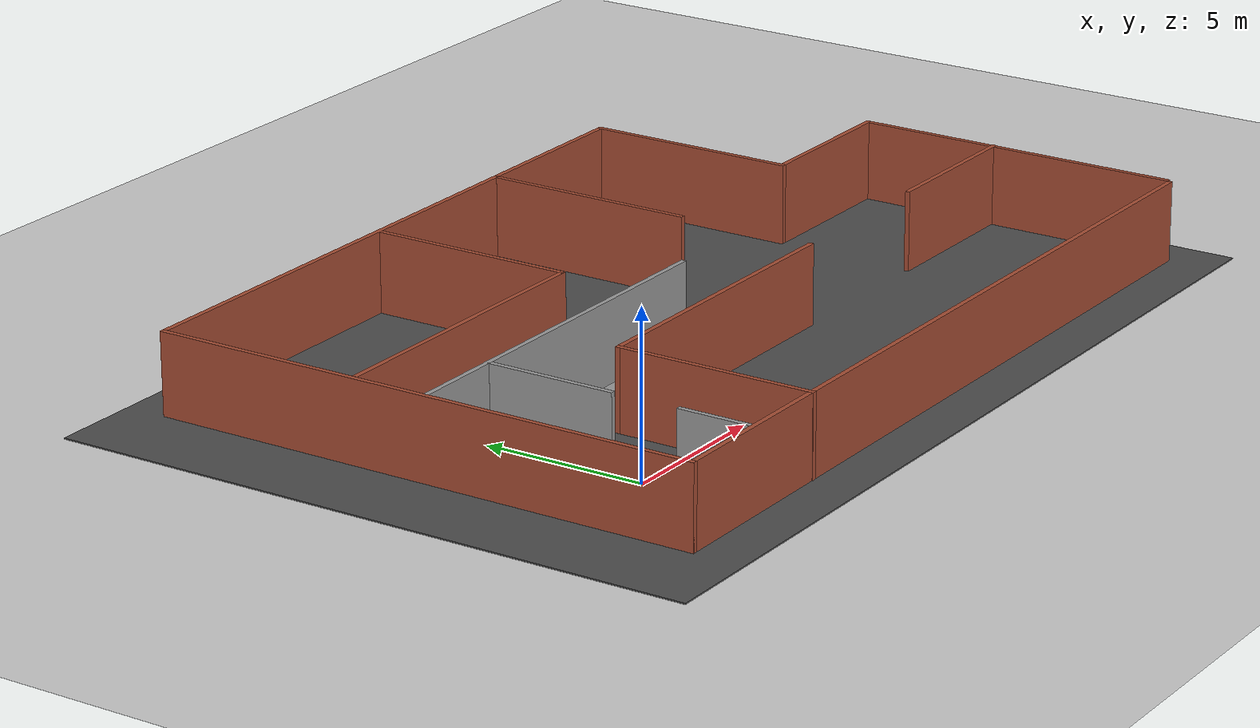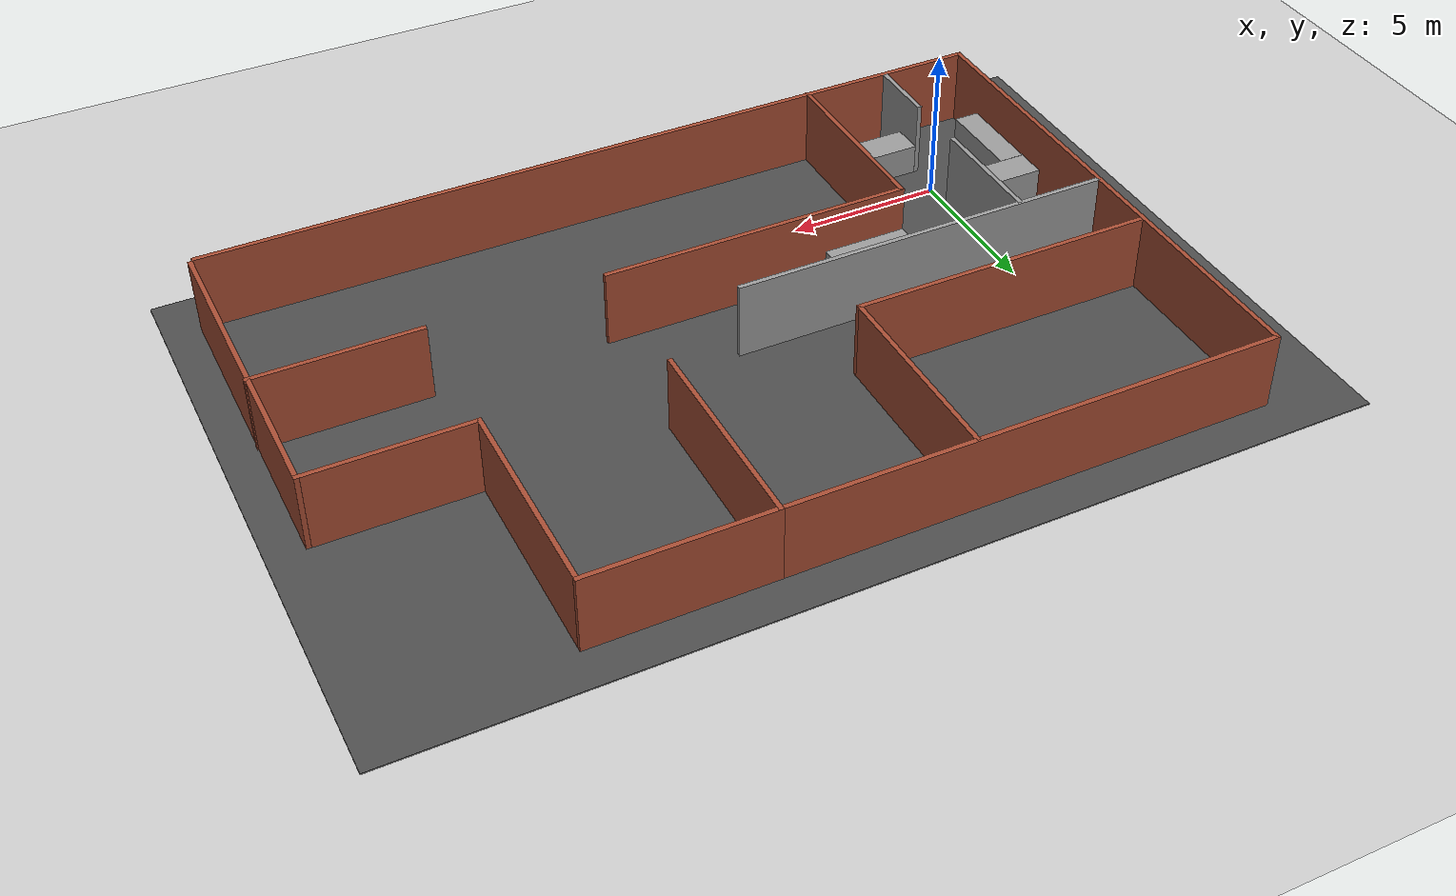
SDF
<sdf version="1.7">
 <world name="default">
  <light name="sun" type="directional">
   <pose>0 0 10 0 -0 0</pose>
   <diffuse>0.8 0.8 0.8 1</diffuse>
   <specular>0.2 0.2 0.2 1</specular>
   <attenuation>
    <range>1000</range>
    <constant>0.9</constant>
    <linear>0.01</linear>
    <quadratic>0.001</quadratic>
   </attenuation>
   <direction>-0.5 0.1 -0.9</direction>
   <spot><inner_angle>0</inner_angle><outer_angle>0</outer_angle><falloff>0</falloff></spot>
  </light>
  <model name="ground_plane">
   <static>1</static>
   <link name="link">
    <collision name="collision">
     <geometry><plane><normal>0 0 1</normal><size>100 100</size></plane></geometry>
     <surface><friction><ode><mu>100</mu><mu2>50</mu2></ode></friction></surface>
    </collision>
    <visual name="visual">
     <cast_shadows>0</cast_shadows>
     <geometry><plane><normal>0 0 1</normal><size>100 100</size></plane></geometry>
     <material>
      <script><uri>file://media/materials/scripts/gazebo.material</uri><name>Gazebo/Grey</name></script>
     </material>
    </visual>
   </link>
  </model>
  <gravity>0 0 -9.8</gravity>
  <magnetic_field>6e-06 2.3e-05 -4.2e-05</magnetic_field>
  <atmosphere type="adiabatic"/>
  <physics type="ode">
   <max_step_size>0.001</max_step_size>
   <real_time_factor>1</real_time_factor>
   <real_time_update_rate>1000</real_time_update_rate>
  </physics>
  <scene><ambient>0.4 0.4 0.4 1</ambient><background>0.7 0.7 0.7 1</background><shadows>1</shadows></scene>
  <audio><device>default</device></audio>
  <spherical_coordinates>
   <surface_model>EARTH_WGS84</surface_model>
   <latitude_deg>0</latitude_deg>
   <longitude_deg>0</longitude_deg>
   <elevation>0</elevation>
   <heading_deg>0</heading_deg>
  </spherical_coordinates>
  <model name="asphalt_plane">
   <static>1</static>
   <link name="link">
    <collision name="collision"><geometry><box><size>0 0 0.1</size></box></geometry></collision>
    <visual name="visual">
     <cast_shadows>0</cast_shadows>
     <geometry><box><size>0 0 0.1</size></box></geometry>
     <material>
      <script>
       <uri>model://asphalt_plane/materials/scripts</uri>
       <uri>model://asphalt_plane/materials/textures</uri>
       <name>vrc/asphalt</name>
      </script>
     </material>
    </visual>
   </link>
   <pose>2.95258 9.97724 0 0 -0 0</pose>
  </model>
  <model name="asphalt_plane_0">
   <static>1</static>
   <link name="link">
    <collision name="collision"><geometry><box><size>30.1972 20 0.1</size></box></geometry></collision>
    <visual name="visual">
     <cast_shadows>0</cast_shadows>
     <geometry><box><size>30.1972 20 0.1</size></box></geometry>
     <material>
      <script>
       <uri>model://asphalt_plane/materials/scripts</uri>
       <uri>model://asphalt_plane/materials/textures</uri>
       <name>vrc/asphalt</name>
      </script>
     </material>
    </visual>
   </link>
   <pose>9.32532 4.89227 -0.045577 0 -0 0</pose>
  </model>
  <model name="Frontier">
   <pose>10.117 5.00234 0 0 -0 0</pose>
   <link name="Wall_11">
    <collision name="Wall_11_Collision">
     <geometry><box><size>15.75 0.15 2.5</size></box></geometry>
     <pose>0 0 1.25 0 -0 0</pose>
    </collision>
    <visual name="Wall_11_Visual">
     <pose>0 0 1.25 0 -0 0</pose>
     <geometry><box><size>15.75 0.15 2.5</size></box></geometry>
     <material>
      <script><uri>file://media/materials/scripts/gazebo.material</uri><name>Gazebo/Bricks</name></script>
      <ambient>1 1 1 1</ambient>
     </material>
     <meta><layer>0</layer></meta>
    </visual>
    <pose>-5.33966 8.55766 0 0 -0 3.14159</pose>
   </link>
   <link name="Wall_12">
    <collision name="Wall_12_Collision">
     <geometry><box><size>17.25 0.15 2.5</size></box></geometry>
     <pose>0 0 1.25 0 -0 0</pose>
    </collision>
    <visual name="Wall_12_Visual">
     <pose>0 0 1.25 0 -0 0</pose>
     <geometry><box><size>17.25 0.15 2.5</size></box></geometry>
     <material>
      <script><uri>file://media/materials/scripts/gazebo.material</uri><name>Gazebo/Bricks</name></script>
      <ambient>1 1 1 1</ambient>
     </material>
     <meta><layer>0</layer></meta>
    </visual>
    <pose>-13.1397 0.007655 0 0 -0 -1.5708</pose>
   </link>
   <link name="Wall_16">
    <collision name="Wall_16_Collision">
     <geometry><box><size>26.25 0.15 2.5</size></box></geometry>
     <pose>0 0 1.25 0 -0 0</pose>
    </collision>
    <visual name="Wall_16_Visual">
     <pose>0 0 1.25 0 -0 0</pose>
     <geometry><box><size>26.25 0.15 2.5</size></box></geometry>
     <material>
      <script><uri>file://media/materials/scripts/gazebo.material</uri><name>Gazebo/Bricks</name></script>
      <ambient>1 1 1 1</ambient>
     </material>
     <meta><layer>0</layer></meta>
    </visual>
    <pose>-0.089662 -8.54234 0 0 -0 0</pose>
   </link>
   <link name="Wall_18">
    <collision name="Wall_18_Collision">
     <geometry><box><size>10.5 0.15 2.5</size></box></geometry>
     <pose>0 0 1.25 0 -0 0</pose>
    </collision>
    <visual name="Wall_18_Visual">
     <pose>0 0 1.25 0 -0 0</pose>
     <geometry><box><size>10.5 0.15 2.5</size></box></geometry>
     <material>
      <script><uri>file://media/materials/scripts/gazebo.material</uri><name>Gazebo/Bricks</name></script>
      <ambient>1 1 1 1</ambient>
     </material>
     <meta><layer>0</layer></meta>
    </visual>
    <pose>13.103 -3.21734 0 0 -0 -1.5708</pose>
   </link>
   <link name="Wall_37">
    <collision name="Wall_37_Collision">
     <geometry><box><size>6.5 0.15 2.5</size></box></geometry>
     <pose>0 0 1.25 0 -0 0</pose>
    </collision>
    <visual name="Wall_37_Visual">
     <pose>0 0 1.25 0 -0 0</pose>
     <geometry><box><size>6.5 0.15 2.5</size></box></geometry>
     <material>
      <script><uri>file://media/materials/scripts/gazebo.material</uri><name>Gazebo/Bricks</name></script>
      <ambient>1 1 1 1</ambient>
     </material>
     <meta><layer>0</layer></meta>
    </visual>
    <pose>-3.38278 5.32384 0 0 -0 -1.5708</pose>
   </link>
   <link name="Wall_39">
    <collision name="Wall_39_Collision">
     <geometry><box><size>9.75 0.15 2.5</size></box></geometry>
     <pose>0 0 1.25 0 -0 0</pose>
    </collision>
    <visual name="Wall_39_Visual">
     <pose>0 0 1.25 0 -0 0</pose>
     <geometry><box><size>9.75 0.15 2.5</size></box></geometry>
     <material>
      <script><uri>file://media/materials/scripts/gazebo.material</uri><name>Gazebo/Bricks</name></script>
      <ambient>1 1 1 1</ambient>
     </material>
     <meta><layer>0</layer></meta>
    </visual>
    <pose>-8.18278 2.14884 0 0 -0 3.14159</pose>
   </link>
   <link name="Wall_4">
    <collision name="Wall_4_Collision">
     <geometry><box><size>5.19236 0.15 2.5</size></box></geometry>
     <pose>0 0 1.25 0 -0 0</pose>
    </collision>
    <visual name="Wall_4_Visual">
     <pose>0 0 1.25 0 -0 0</pose>
     <geometry><box><size>5.19236 0.15 2.5</size></box></geometry>
     <material>
      <script><uri>file://media/materials/scripts/gazebo.material</uri><name>Gazebo/Bricks</name></script>
      <ambient>1 1 1 1</ambient>
     </material>
     <meta><layer>0</layer></meta>
    </visual>
    <pose>10.5817 1.95765 0 0 -0 3.14159</pose>
   </link>
   <link name="Wall_46">
    <collision name="Wall_46_Collision">
     <geometry><box><size>5.25 0.15 2.5</size></box></geometry>
     <pose>0 0 1.25 0 -0 0</pose>
    </collision>
    <visual name="Wall_46_Visual">
     <pose>0 0 1.25 0 -0 0</pose>
     <geometry><box><size>5.25 0.15 2.5</size></box></geometry>
     <material>
      <script><uri>file://media/materials/scripts/gazebo.material</uri><name>Gazebo/Bricks</name></script>
      <ambient>1 1 1 1</ambient>
     </material>
     <meta><layer>0</layer></meta>
    </visual>
    <pose>10.5897 -2.46083 0 0 -0 3.14159</pose>
   </link>
   <link name="Wall_52">
    <collision name="Wall_52_Collision">
     <geometry><box><size>10 0.15 2.5</size></box></geometry>
     <pose>0 0 1.25 0 -0 0</pose>
    </collision>
    <visual name="Wall_52_Visual">
     <pose>0 0 1.25 0 -0 0</pose>
     <geometry><box><size>10 0.15 2.5</size></box></geometry>
     <material>
      <script><uri>file://media/materials/scripts/gazebo.material</uri><name>Gazebo/Bricks</name></script>
      <ambient>1 1 1 1</ambient>
     </material>
     <meta><layer>0</layer></meta>
    </visual>
    <pose>-2.47147 -2.45766 0 0 -0 3.14159</pose>
   </link>
   <link name="Wall_56">
    <collision name="Wall_56_Collision">
     <geometry><box><size>6.25 0.15 2.5</size></box></geometry>
     <pose>0 0 1.25 0 -0 0</pose>
    </collision>
    <visual name="Wall_56_Visual">
     <pose>0 0 1.25 0 -0 0</pose>
     <geometry><box><size>6.25 0.15 2.5</size></box></geometry>
     <material>
      <script><uri>file://media/materials/scripts/gazebo.material</uri><name>Gazebo/Bricks</name></script>
      <ambient>1 1 1 1</ambient>
     </material>
     <meta><layer>0</layer></meta>
    </visual>
    <pose>-7.39647 -5.50766 0 0 -0 -1.5708</pose>
   </link>
   <link name="Wall_7">
    <collision name="Wall_7_Collision">
     <geometry><box><size>6.75 0.15 2.5</size></box></geometry>
     <pose>0 0 1.25 0 -0 0</pose>
    </collision>
    <visual name="Wall_7_Visual">
     <pose>0 0 1.25 0 -0 0</pose>
     <geometry><box><size>6.75 0.15 2.5</size></box></geometry>
     <material>
      <script><uri>file://media/materials/scripts/gazebo.material</uri><name>Gazebo/Bricks</name></script>
      <ambient>1 1 1 1</ambient>
     </material>
     <meta><layer>0</layer></meta>
    </visual>
    <pose>8.06034 5.25765 0 0 -0 1.5708</pose>
   </link>
   <link name="Wall_8">
    <collision name="Wall_8_Collision">
     <geometry><box><size>5.75 0.15 2.5</size></box></geometry>
     <pose>0 0 1.25 0 -0 0</pose>
    </collision>
    <visual name="Wall_8_Visual">
     <pose>0 0 1.25 0 -0 0</pose>
     <geometry><box><size>5.75 0.15 2.5</size></box></geometry>
     <material>
      <script><uri>file://media/materials/scripts/gazebo.material</uri><name>Gazebo/Bricks</name></script>
      <ambient>1 1 1 1</ambient>
     </material>
     <meta><layer>0</layer></meta>
    </visual>
    <pose>5.26034 8.55766 0 0 -0 3.14159</pose>
   </link>
   <link name="Wall_9">
    <collision name="Wall_9_Collision">
     <geometry><box><size>6.75 0.15 2.5</size></box></geometry>
     <pose>0 0 1.25 0 -0 0</pose>
    </collision>
    <visual name="Wall_9_Visual">
     <pose>0 0 1.25 0 -0 0</pose>
     <geometry><box><size>6.75 0.15 2.5</size></box></geometry>
     <material>
      <script><uri>file://media/materials/scripts/gazebo.material</uri><name>Gazebo/Bricks</name></script>
      <ambient>1 1 1 1</ambient>
     </material>
     <meta><layer>0</layer></meta>
    </visual>
    <pose>2.46034 5.25765 0 0 -0 -1.5708</pose>
   </link>
   <static>1</static>
  </model>
  <model name="Inner_Frontier">
   <pose>3.17419 0.70688 0 0 -0 0</pose>
   <link name="Wall_60">
    <collision name="Wall_60_Collision">
     <geometry><box><size>12.5 0.15 2.5</size></box></geometry>
     <pose>0 0 1.25 0 -0 0</pose>
    </collision>
    <visual name="Wall_60_Visual">
     <pose>0 0 1.25 0 -0 0</pose>
     <geometry><box><size>12.5 0.15 2.5</size></box></geometry>
     <material>
      <script><uri>file://media/materials/scripts/gazebo.material</uri><name>Gazebo/Grey</name></script>
      <ambient>1 1 1 1</ambient>
     </material>
     <meta><layer>0</layer></meta>
    </visual>
    <pose>-0 4.10151 0 0 -0 0</pose>
   </link>
   <link name="Wall_64">
    <collision name="Wall_64_Collision">
     <geometry><box><size>4 0.15 2.5</size></box></geometry>
     <pose>0 0 1.25 0 -0 0</pose>
    </collision>
    <visual name="Wall_64_Visual">
     <pose>0 0 1.25 0 -0 0</pose>
     <geometry><box><size>4 0.15 2.5</size></box></geometry>
     <material>
      <script><uri>file://media/materials/scripts/gazebo.material</uri><name>Gazebo/Grey</name></script>
      <ambient>1 1 1 1</ambient>
     </material>
     <meta><layer>0</layer></meta>
    </visual>
    <pose>-3.32283 2.10042 0 0 -0 -1.5708</pose>
   </link>
   <link name="Wall_68">
    <collision name="Wall_68_Collision">
     <geometry><box><size>2.25 0.15 2.5</size></box></geometry>
     <pose>0 0 1.25 0 -0 0</pose>
    </collision>
    <visual name="Wall_68_Visual">
     <pose>0 0 1.25 0 -0 0</pose>
     <geometry><box><size>2.25 0.15 2.5</size></box></geometry>
     <material>
      <script><uri>file://media/materials/scripts/gazebo.material</uri><name>Gazebo/Grey</name></script>
      <ambient>1 1 1 1</ambient>
     </material>
     <meta><layer>0</layer></meta>
    </visual>
    <pose>-3.31161 -3.05151 0 0 -0 -1.5708</pose>
   </link>
   <static>1</static>
  </model>
  <model name="unit_box">
   <pose>-1.58648 1.27793 0.504322 0 -7.4e-05 1e-06</pose>
   <link name="link">
    <inertial>
     <mass>1</mass>
     <inertia>
      <ixx>0.166667</ixx>
      <ixy>0</ixy>
      <ixz>0</ixz>
      <iyy>0.166667</iyy>
      <iyz>0</iyz>
      <izz>0.166667</izz>
     </inertia>
    </inertial>
    <collision name="collision"><geometry><box><size>2.71168 1 1</size></box></geometry></collision>
    <visual name="visual">
     <geometry><box><size>2.71168 1 1</size></box></geometry>
     <material>
      <script><name>Gazebo/Grey</name><uri>file://media/materials/scripts/gazebo.material</uri></script>
     </material>
    </visual>
   </link>
  </model>
  <model name="unit_box_clone">
   <pose>-2.5289 -0.640629 0.504422 -0 -2e-06 0.001393</pose>
   <link name="link">
    <inertial>
     <mass>1</mass>
     <inertia>
      <ixx>0.166667</ixx>
      <ixy>0</ixy>
      <ixz>0</ixz>
      <iyy>0.166667</iyy>
      <iyz>0</iyz>
      <izz>0.166667</izz>
     </inertia>
    </inertial>
    <collision name="collision"><geometry><box><size>0.827762 2.8206 1</size></box></geometry></collision>
    <visual name="visual">
     <geometry><box><size>0.827762 2.8206 1</size></box></geometry>
     <material>
      <script><name>Gazebo/Grey</name><uri>file://media/materials/scripts/gazebo.material</uri></script>
     </material>
    </visual>
   </link>
  </model>
  <model name="unit_box_clone_0">
   <pose>1.28849 -1.72168 0.504423 0 0 -4.5e-05</pose>
   <link name="link">
    <inertial>
     <mass>1</mass>
     <inertia>
      <ixx>0.166667</ixx>
      <ixy>0</ixy>
      <ixz>0</ixz>
      <iyy>0.166667</iyy>
      <iyz>0</iyz>
      <izz>0.166667</izz>
     </inertia>
    </inertial>
    <collision name="collision"><geometry><box><size>2.69936 1 1</size></box></geometry></collision>
    <visual name="visual">
     <geometry><box><size>2.69936 1 1</size></box></geometry>
     <material>
      <script><name>Gazebo/Grey</name><uri>file://media/materials/scripts/gazebo.material</uri></script>
     </material>
    </visual>
   </link>
  </model>
  <model name="unit_box_clone_1">
   <pose>3.99818 2.97021 0.50442 7e-06 -0 7.8e-05</pose>
   <link name="link">
    <inertial>
     <mass>1</mass>
     <inertia>
      <ixx>0.166667</ixx>
      <ixy>0</ixy>
      <ixz>0</ixz>
      <iyy>0.166667</iyy>
      <iyz>0</iyz>
      <izz>0.166667</izz>
     </inertia>
    </inertial>
    <collision name="collision"><geometry><box><size>2.71169 0.695014 1</size></box></geometry></collision>
    <visual name="visual">
     <geometry><box><size>2.71169 0.695014 1</size></box></geometry>
     <material>
      <script><name>Gazebo/Grey</name><uri>file://media/materials/scripts/gazebo.material</uri></script>
     </material>
    </visual>
   </link>
  </model>
  <model name="unit_box_clone_1_clone">
   <pose>7.9117 4.37501 0.504415 -0 9e-06 8.1e-05</pose>
   <link name="link">
    <inertial>
     <mass>1</mass>
     <inertia>
      <ixx>0.166667</ixx>
      <ixy>0</ixy>
      <ixz>0</ixz>
      <iyy>0.166667</iyy>
      <iyz>0</iyz>
      <izz>0.166667</izz>
     </inertia>
    </inertial>
    <collision name="collision"><geometry><box><size>1.86461 0.695014 1</size></box></geometry></collision>
    <visual name="visual">
     <geometry><box><size>1.86461 0.695014 1</size></box></geometry>
     <material>
      <script><name>Gazebo/Grey</name><uri>file://media/materials/scripts/gazebo.material</uri></script>
     </material>
    </visual>
   </link>
  </model>
  <model name="unit_box_clone_1_clone_clone">
   <pose>0.555381 4.37924 0.504424 -2e-06 0 -4e-06</pose>
   <link name="link">
    <inertial>
     <mass>1</mass>
     <inertia>
      <ixx>0.166667</ixx>
      <ixy>0</ixy>
      <ixz>0</ixz>
      <iyy>0.166667</iyy>
      <iyz>0</iyz>
      <izz>0.166667</izz>
     </inertia>
    </inertial>
    <collision name="collision"><geometry><box><size>1.25801 0.695014 1</size></box></geometry></collision>
    <visual name="visual">
     <geometry><box><size>1.25801 0.695014 1</size></box></geometry>
     <material>
      <script><name>Gazebo/Grey</name><uri>file://media/materials/scripts/gazebo.material</uri></script>
     </material>
    </visual>
   </link>
  </model>
 </world>
</sdf>
